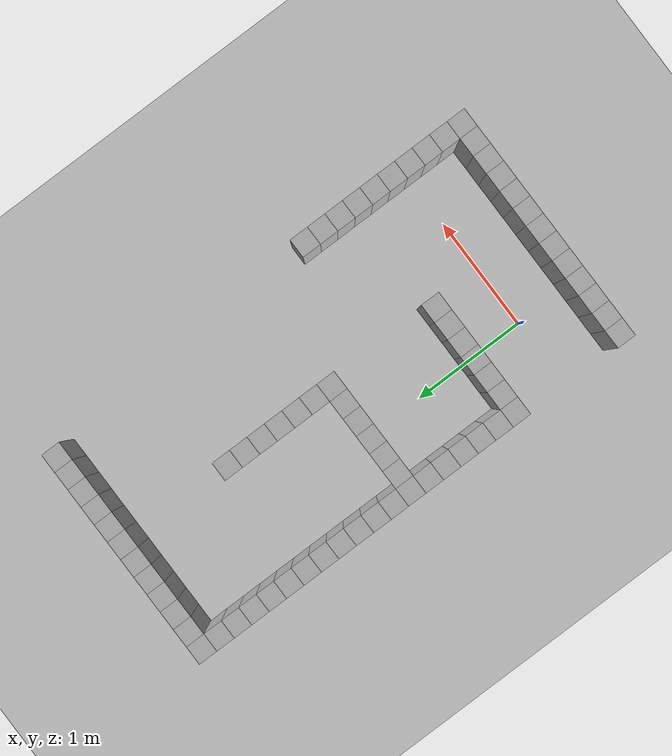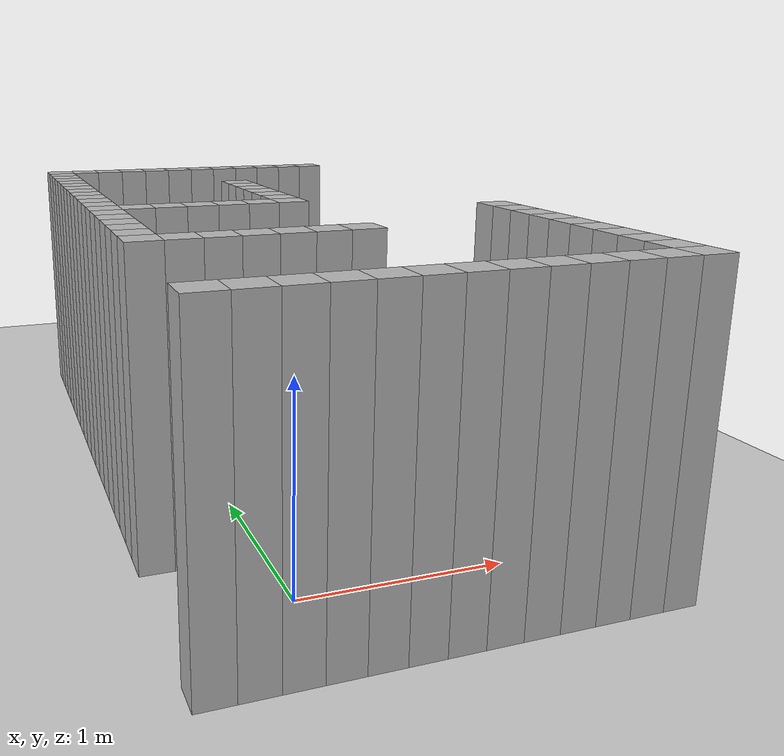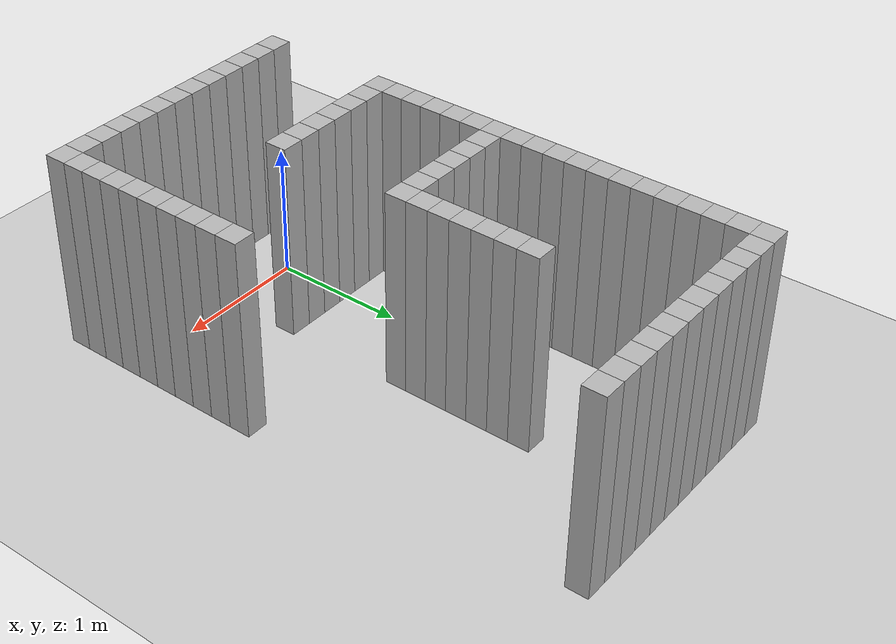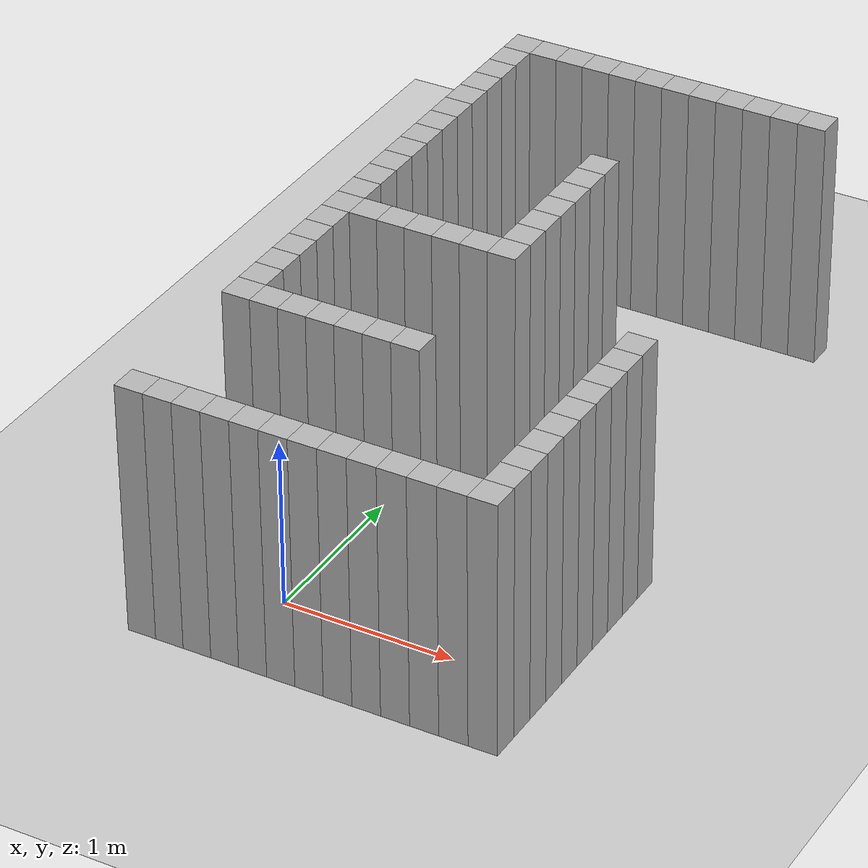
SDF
<sdf version="1.6">
 <world name="default">
  <include><uri>model://sun</uri></include>
  <include><uri>model://ground_plane</uri></include>
  <model name="Maze">
   <pose>-0.75 -0.75 0 0 0 0 0</pose>
   <link name="link_0">
    <pose>0.25 0.25 0.75 0 0 0 0</pose>
    <inertial><mass>1</mass></inertial>
    <collision name="collision_0">
     <geometry><box><size>0.16666666666666666 0.16666666666666666 1.5</size></box></geometry>
    </collision>
    <visual name="visual_0">
     <geometry><box><size>0.16666666666666666 0.16666666666666666 1.5</size></box></geometry>
    </visual>
   </link>
   <link name="link_1">
    <pose>0.25 1.2499999999999998 0.75 0 0 0 0</pose>
    <inertial><mass>1</mass></inertial>
    <collision name="collision_1">
     <geometry><box><size>0.16666666666666666 0.16666666666666666 1.5</size></box></geometry>
    </collision>
    <visual name="visual_1">
     <geometry><box><size>0.16666666666666666 0.16666666666666666 1.5</size></box></geometry>
    </visual>
   </link>
   <link name="link_2">
    <pose>0.25 1.4166666666666665 0.75 0 0 0 0</pose>
    <inertial><mass>1</mass></inertial>
    <collision name="collision_2">
     <geometry><box><size>0.16666666666666666 0.16666666666666666 1.5</size></box></geometry>
    </collision>
    <visual name="visual_2">
     <geometry><box><size>0.16666666666666666 0.16666666666666666 1.5</size></box></geometry>
    </visual>
   </link>
   <link name="link_3">
    <pose>0.25 1.5833333333333333 0.75 0 0 0 0</pose>
    <inertial><mass>1</mass></inertial>
    <collision name="collision_3">
     <geometry><box><size>0.16666666666666666 0.16666666666666666 1.5</size></box></geometry>
    </collision>
    <visual name="visual_3">
     <geometry><box><size>0.16666666666666666 0.16666666666666666 1.5</size></box></geometry>
    </visual>
   </link>
   <link name="link_4">
    <pose>0.25 1.7499999999999998 0.75 0 0 0 0</pose>
    <inertial><mass>1</mass></inertial>
    <collision name="collision_4">
     <geometry><box><size>0.16666666666666666 0.16666666666666666 1.5</size></box></geometry>
    </collision>
    <visual name="visual_4">
     <geometry><box><size>0.16666666666666666 0.16666666666666666 1.5</size></box></geometry>
    </visual>
   </link>
   <link name="link_5">
    <pose>0.25 1.9166666666666665 0.75 0 0 0 0</pose>
    <inertial><mass>1</mass></inertial>
    <collision name="collision_5">
     <geometry><box><size>0.16666666666666666 0.16666666666666666 1.5</size></box></geometry>
    </collision>
    <visual name="visual_5">
     <geometry><box><size>0.16666666666666666 0.16666666666666666 1.5</size></box></geometry>
    </visual>
   </link>
   <link name="link_6">
    <pose>0.25 2.0833333333333335 0.75 0 0 0 0</pose>
    <inertial><mass>1</mass></inertial>
    <collision name="collision_6">
     <geometry><box><size>0.16666666666666666 0.16666666666666666 1.5</size></box></geometry>
    </collision>
    <visual name="visual_6">
     <geometry><box><size>0.16666666666666666 0.16666666666666666 1.5</size></box></geometry>
    </visual>
   </link>
   <link name="link_7">
    <pose>0.25 2.25 0.75 0 0 0 0</pose>
    <inertial><mass>1</mass></inertial>
    <collision name="collision_7">
     <geometry><box><size>0.16666666666666666 0.16666666666666666 1.5</size></box></geometry>
    </collision>
    <visual name="visual_7">
     <geometry><box><size>0.16666666666666666 0.16666666666666666 1.5</size></box></geometry>
    </visual>
   </link>
   <link name="link_8">
    <pose>0.25 2.4166666666666665 0.75 0 0 0 0</pose>
    <inertial><mass>1</mass></inertial>
    <collision name="collision_8">
     <geometry><box><size>0.16666666666666666 0.16666666666666666 1.5</size></box></geometry>
    </collision>
    <visual name="visual_8">
     <geometry><box><size>0.16666666666666666 0.16666666666666666 1.5</size></box></geometry>
    </visual>
   </link>
   <link name="link_9">
    <pose>0.25 2.5833333333333335 0.75 0 0 0 0</pose>
    <inertial><mass>1</mass></inertial>
    <collision name="collision_9">
     <geometry><box><size>0.16666666666666666 0.16666666666666666 1.5</size></box></geometry>
    </collision>
    <visual name="visual_9">
     <geometry><box><size>0.16666666666666666 0.16666666666666666 1.5</size></box></geometry>
    </visual>
   </link>
   <link name="link_10">
    <pose>0.25 2.75 0.75 0 0 0 0</pose>
    <inertial><mass>1</mass></inertial>
    <collision name="collision_10">
     <geometry><box><size>0.16666666666666666 0.16666666666666666 1.5</size></box></geometry>
    </collision>
    <visual name="visual_10">
     <geometry><box><size>0.16666666666666666 0.16666666666666666 1.5</size></box></geometry>
    </visual>
   </link>
   <link name="link_11">
    <pose>0.25 2.9166666666666665 0.75 0 0 0 0</pose>
    <inertial><mass>1</mass></inertial>
    <collision name="collision_11">
     <geometry><box><size>0.16666666666666666 0.16666666666666666 1.5</size></box></geometry>
    </collision>
    <visual name="visual_11">
     <geometry><box><size>0.16666666666666666 0.16666666666666666 1.5</size></box></geometry>
    </visual>
   </link>
   <link name="link_12">
    <pose>0.25 3.0833333333333335 0.75 0 0 0 0</pose>
    <inertial><mass>1</mass></inertial>
    <collision name="collision_12">
     <geometry><box><size>0.16666666666666666 0.16666666666666666 1.5</size></box></geometry>
    </collision>
    <visual name="visual_12">
     <geometry><box><size>0.16666666666666666 0.16666666666666666 1.5</size></box></geometry>
    </visual>
   </link>
   <link name="link_13">
    <pose>0.25 3.25 0.75 0 0 0 0</pose>
    <inertial><mass>1</mass></inertial>
    <collision name="collision_13">
     <geometry><box><size>0.16666666666666666 0.16666666666666666 1.5</size></box></geometry>
    </collision>
    <visual name="visual_13">
     <geometry><box><size>0.16666666666666666 0.16666666666666666 1.5</size></box></geometry>
    </visual>
   </link>
   <link name="link_14">
    <pose>0.25 3.4166666666666665 0.75 0 0 0 0</pose>
    <inertial><mass>1</mass></inertial>
    <collision name="collision_14">
     <geometry><box><size>0.16666666666666666 0.16666666666666666 1.5</size></box></geometry>
    </collision>
    <visual name="visual_14">
     <geometry><box><size>0.16666666666666666 0.16666666666666666 1.5</size></box></geometry>
    </visual>
   </link>
   <link name="link_15">
    <pose>0.25 3.5833333333333335 0.75 0 0 0 0</pose>
    <inertial><mass>1</mass></inertial>
    <collision name="collision_15">
     <geometry><box><size>0.16666666666666666 0.16666666666666666 1.5</size></box></geometry>
    </collision>
    <visual name="visual_15">
     <geometry><box><size>0.16666666666666666 0.16666666666666666 1.5</size></box></geometry>
    </visual>
   </link>
   <link name="link_16">
    <pose>0.25 3.75 0.75 0 0 0 0</pose>
    <inertial><mass>1</mass></inertial>
    <collision name="collision_16">
     <geometry><box><size>0.16666666666666666 0.16666666666666666 1.5</size></box></geometry>
    </collision>
    <visual name="visual_16">
     <geometry><box><size>0.16666666666666666 0.16666666666666666 1.5</size></box></geometry>
    </visual>
   </link>
   <link name="link_17">
    <pose>0.25 3.9166666666666665 0.75 0 0 0 0</pose>
    <inertial><mass>1</mass></inertial>
    <collision name="collision_17">
     <geometry><box><size>0.16666666666666666 0.16666666666666666 1.5</size></box></geometry>
    </collision>
    <visual name="visual_17">
     <geometry><box><size>0.16666666666666666 0.16666666666666666 1.5</size></box></geometry>
    </visual>
   </link>
   <link name="link_18">
    <pose>0.25 4.083333333333333 0.75 0 0 0 0</pose>
    <inertial><mass>1</mass></inertial>
    <collision name="collision_18">
     <geometry><box><size>0.16666666666666666 0.16666666666666666 1.5</size></box></geometry>
    </collision>
    <visual name="visual_18">
     <geometry><box><size>0.16666666666666666 0.16666666666666666 1.5</size></box></geometry>
    </visual>
   </link>
   <link name="link_19">
    <pose>0.25 4.249999999999999 0.75 0 0 0 0</pose>
    <inertial><mass>1</mass></inertial>
    <collision name="collision_19">
     <geometry><box><size>0.16666666666666666 0.16666666666666666 1.5</size></box></geometry>
    </collision>
    <visual name="visual_19">
     <geometry><box><size>0.16666666666666666 0.16666666666666666 1.5</size></box></geometry>
    </visual>
   </link>
   <link name="link_20">
    <pose>0.41666666666666663 0.25 0.75 0 0 0 0</pose>
    <inertial><mass>1</mass></inertial>
    <collision name="collision_20">
     <geometry><box><size>0.16666666666666666 0.16666666666666666 1.5</size></box></geometry>
    </collision>
    <visual name="visual_20">
     <geometry><box><size>0.16666666666666666 0.16666666666666666 1.5</size></box></geometry>
    </visual>
   </link>
   <link name="link_21">
    <pose>0.41666666666666663 1.2499999999999998 0.75 0 0 0 0</pose>
    <inertial><mass>1</mass></inertial>
    <collision name="collision_21">
     <geometry><box><size>0.16666666666666666 0.16666666666666666 1.5</size></box></geometry>
    </collision>
    <visual name="visual_21">
     <geometry><box><size>0.16666666666666666 0.16666666666666666 1.5</size></box></geometry>
    </visual>
   </link>
   <link name="link_22">
    <pose>0.41666666666666663 2.25 0.75 0 0 0 0</pose>
    <inertial><mass>1</mass></inertial>
    <collision name="collision_22">
     <geometry><box><size>0.16666666666666666 0.16666666666666666 1.5</size></box></geometry>
    </collision>
    <visual name="visual_22">
     <geometry><box><size>0.16666666666666666 0.16666666666666666 1.5</size></box></geometry>
    </visual>
   </link>
   <link name="link_23">
    <pose>0.41666666666666663 4.249999999999999 0.75 0 0 0 0</pose>
    <inertial><mass>1</mass></inertial>
    <collision name="collision_23">
     <geometry><box><size>0.16666666666666666 0.16666666666666666 1.5</size></box></geometry>
    </collision>
    <visual name="visual_23">
     <geometry><box><size>0.16666666666666666 0.16666666666666666 1.5</size></box></geometry>
    </visual>
   </link>
   <link name="link_24">
    <pose>0.5833333333333334 0.25 0.75 0 0 0 0</pose>
    <inertial><mass>1</mass></inertial>
    <collision name="collision_24">
     <geometry><box><size>0.16666666666666666 0.16666666666666666 1.5</size></box></geometry>
    </collision>
    <visual name="visual_24">
     <geometry><box><size>0.16666666666666666 0.16666666666666666 1.5</size></box></geometry>
    </visual>
   </link>
   <link name="link_25">
    <pose>0.5833333333333334 1.2499999999999998 0.75 0 0 0 0</pose>
    <inertial><mass>1</mass></inertial>
    <collision name="collision_25">
     <geometry><box><size>0.16666666666666666 0.16666666666666666 1.5</size></box></geometry>
    </collision>
    <visual name="visual_25">
     <geometry><box><size>0.16666666666666666 0.16666666666666666 1.5</size></box></geometry>
    </visual>
   </link>
   <link name="link_26">
    <pose>0.5833333333333334 2.25 0.75 0 0 0 0</pose>
    <inertial><mass>1</mass></inertial>
    <collision name="collision_26">
     <geometry><box><size>0.16666666666666666 0.16666666666666666 1.5</size></box></geometry>
    </collision>
    <visual name="visual_26">
     <geometry><box><size>0.16666666666666666 0.16666666666666666 1.5</size></box></geometry>
    </visual>
   </link>
   <link name="link_27">
    <pose>0.5833333333333334 4.249999999999999 0.75 0 0 0 0</pose>
    <inertial><mass>1</mass></inertial>
    <collision name="collision_27">
     <geometry><box><size>0.16666666666666666 0.16666666666666666 1.5</size></box></geometry>
    </collision>
    <visual name="visual_27">
     <geometry><box><size>0.16666666666666666 0.16666666666666666 1.5</size></box></geometry>
    </visual>
   </link>
   <link name="link_28">
    <pose>0.75 0.25 0.75 0 0 0 0</pose>
    <inertial><mass>1</mass></inertial>
    <collision name="collision_28">
     <geometry><box><size>0.16666666666666666 0.16666666666666666 1.5</size></box></geometry>
    </collision>
    <visual name="visual_28">
     <geometry><box><size>0.16666666666666666 0.16666666666666666 1.5</size></box></geometry>
    </visual>
   </link>
   <link name="link_29">
    <pose>0.75 1.2499999999999998 0.75 0 0 0 0</pose>
    <inertial><mass>1</mass></inertial>
    <collision name="collision_29">
     <geometry><box><size>0.16666666666666666 0.16666666666666666 1.5</size></box></geometry>
    </collision>
    <visual name="visual_29">
     <geometry><box><size>0.16666666666666666 0.16666666666666666 1.5</size></box></geometry>
    </visual>
   </link>
   <link name="link_30">
    <pose>0.75 2.25 0.75 0 0 0 0</pose>
    <inertial><mass>1</mass></inertial>
    <collision name="collision_30">
     <geometry><box><size>0.16666666666666666 0.16666666666666666 1.5</size></box></geometry>
    </collision>
    <visual name="visual_30">
     <geometry><box><size>0.16666666666666666 0.16666666666666666 1.5</size></box></geometry>
    </visual>
   </link>
   <link name="link_31">
    <pose>0.75 4.249999999999999 0.75 0 0 0 0</pose>
    <inertial><mass>1</mass></inertial>
    <collision name="collision_31">
     <geometry><box><size>0.16666666666666666 0.16666666666666666 1.5</size></box></geometry>
    </collision>
    <visual name="visual_31">
     <geometry><box><size>0.16666666666666666 0.16666666666666666 1.5</size></box></geometry>
    </visual>
   </link>
   <link name="link_32">
    <pose>0.9166666666666666 0.25 0.75 0 0 0 0</pose>
    <inertial><mass>1</mass></inertial>
    <collision name="collision_32">
     <geometry><box><size>0.16666666666666666 0.16666666666666666 1.5</size></box></geometry>
    </collision>
    <visual name="visual_32">
     <geometry><box><size>0.16666666666666666 0.16666666666666666 1.5</size></box></geometry>
    </visual>
   </link>
   <link name="link_33">
    <pose>0.9166666666666666 1.2499999999999998 0.75 0 0 0 0</pose>
    <inertial><mass>1</mass></inertial>
    <collision name="collision_33">
     <geometry><box><size>0.16666666666666666 0.16666666666666666 1.5</size></box></geometry>
    </collision>
    <visual name="visual_33">
     <geometry><box><size>0.16666666666666666 0.16666666666666666 1.5</size></box></geometry>
    </visual>
   </link>
   <link name="link_34">
    <pose>0.9166666666666666 2.25 0.75 0 0 0 0</pose>
    <inertial><mass>1</mass></inertial>
    <collision name="collision_34">
     <geometry><box><size>0.16666666666666666 0.16666666666666666 1.5</size></box></geometry>
    </collision>
    <visual name="visual_34">
     <geometry><box><size>0.16666666666666666 0.16666666666666666 1.5</size></box></geometry>
    </visual>
   </link>
   <link name="link_35">
    <pose>0.9166666666666666 4.249999999999999 0.75 0 0 0 0</pose>
    <inertial><mass>1</mass></inertial>
    <collision name="collision_35">
     <geometry><box><size>0.16666666666666666 0.16666666666666666 1.5</size></box></geometry>
    </collision>
    <visual name="visual_35">
     <geometry><box><size>0.16666666666666666 0.16666666666666666 1.5</size></box></geometry>
    </visual>
   </link>
   <link name="link_36">
    <pose>1.0833333333333333 0.25 0.75 0 0 0 0</pose>
    <inertial><mass>1</mass></inertial>
    <collision name="collision_36">
     <geometry><box><size>0.16666666666666666 0.16666666666666666 1.5</size></box></geometry>
    </collision>
    <visual name="visual_36">
     <geometry><box><size>0.16666666666666666 0.16666666666666666 1.5</size></box></geometry>
    </visual>
   </link>
   <link name="link_37">
    <pose>1.0833333333333333 1.2499999999999998 0.75 0 0 0 0</pose>
    <inertial><mass>1</mass></inertial>
    <collision name="collision_37">
     <geometry><box><size>0.16666666666666666 0.16666666666666666 1.5</size></box></geometry>
    </collision>
    <visual name="visual_37">
     <geometry><box><size>0.16666666666666666 0.16666666666666666 1.5</size></box></geometry>
    </visual>
   </link>
   <link name="link_38">
    <pose>1.0833333333333333 2.25 0.75 0 0 0 0</pose>
    <inertial><mass>1</mass></inertial>
    <collision name="collision_38">
     <geometry><box><size>0.16666666666666666 0.16666666666666666 1.5</size></box></geometry>
    </collision>
    <visual name="visual_38">
     <geometry><box><size>0.16666666666666666 0.16666666666666666 1.5</size></box></geometry>
    </visual>
   </link>
   <link name="link_39">
    <pose>1.0833333333333333 4.249999999999999 0.75 0 0 0 0</pose>
    <inertial><mass>1</mass></inertial>
    <collision name="collision_39">
     <geometry><box><size>0.16666666666666666 0.16666666666666666 1.5</size></box></geometry>
    </collision>
    <visual name="visual_39">
     <geometry><box><size>0.16666666666666666 0.16666666666666666 1.5</size></box></geometry>
    </visual>
   </link>
   <link name="link_40">
    <pose>1.2499999999999998 0.25 0.75 0 0 0 0</pose>
    <inertial><mass>1</mass></inertial>
    <collision name="collision_40">
     <geometry><box><size>0.16666666666666666 0.16666666666666666 1.5</size></box></geometry>
    </collision>
    <visual name="visual_40">
     <geometry><box><size>0.16666666666666666 0.16666666666666666 1.5</size></box></geometry>
    </visual>
   </link>
   <link name="link_41">
    <pose>1.2499999999999998 1.2499999999999998 0.75 0 0 0 0</pose>
    <inertial><mass>1</mass></inertial>
    <collision name="collision_41">
     <geometry><box><size>0.16666666666666666 0.16666666666666666 1.5</size></box></geometry>
    </collision>
    <visual name="visual_41">
     <geometry><box><size>0.16666666666666666 0.16666666666666666 1.5</size></box></geometry>
    </visual>
   </link>
   <link name="link_42">
    <pose>1.2499999999999998 2.25 0.75 0 0 0 0</pose>
    <inertial><mass>1</mass></inertial>
    <collision name="collision_42">
     <geometry><box><size>0.16666666666666666 0.16666666666666666 1.5</size></box></geometry>
    </collision>
    <visual name="visual_42">
     <geometry><box><size>0.16666666666666666 0.16666666666666666 1.5</size></box></geometry>
    </visual>
   </link>
   <link name="link_43">
    <pose>1.2499999999999998 2.4166666666666665 0.75 0 0 0 0</pose>
    <inertial><mass>1</mass></inertial>
    <collision name="collision_43">
     <geometry><box><size>0.16666666666666666 0.16666666666666666 1.5</size></box></geometry>
    </collision>
    <visual name="visual_43">
     <geometry><box><size>0.16666666666666666 0.16666666666666666 1.5</size></box></geometry>
    </visual>
   </link>
   <link name="link_44">
    <pose>1.2499999999999998 2.5833333333333335 0.75 0 0 0 0</pose>
    <inertial><mass>1</mass></inertial>
    <collision name="collision_44">
     <geometry><box><size>0.16666666666666666 0.16666666666666666 1.5</size></box></geometry>
    </collision>
    <visual name="visual_44">
     <geometry><box><size>0.16666666666666666 0.16666666666666666 1.5</size></box></geometry>
    </visual>
   </link>
   <link name="link_45">
    <pose>1.2499999999999998 2.75 0.75 0 0 0 0</pose>
    <inertial><mass>1</mass></inertial>
    <collision name="collision_45">
     <geometry><box><size>0.16666666666666666 0.16666666666666666 1.5</size></box></geometry>
    </collision>
    <visual name="visual_45">
     <geometry><box><size>0.16666666666666666 0.16666666666666666 1.5</size></box></geometry>
    </visual>
   </link>
   <link name="link_46">
    <pose>1.2499999999999998 2.9166666666666665 0.75 0 0 0 0</pose>
    <inertial><mass>1</mass></inertial>
    <collision name="collision_46">
     <geometry><box><size>0.16666666666666666 0.16666666666666666 1.5</size></box></geometry>
    </collision>
    <visual name="visual_46">
     <geometry><box><size>0.16666666666666666 0.16666666666666666 1.5</size></box></geometry>
    </visual>
   </link>
   <link name="link_47">
    <pose>1.2499999999999998 3.0833333333333335 0.75 0 0 0 0</pose>
    <inertial><mass>1</mass></inertial>
    <collision name="collision_47">
     <geometry><box><size>0.16666666666666666 0.16666666666666666 1.5</size></box></geometry>
    </collision>
    <visual name="visual_47">
     <geometry><box><size>0.16666666666666666 0.16666666666666666 1.5</size></box></geometry>
    </visual>
   </link>
   <link name="link_48">
    <pose>1.2499999999999998 3.25 0.75 0 0 0 0</pose>
    <inertial><mass>1</mass></inertial>
    <collision name="collision_48">
     <geometry><box><size>0.16666666666666666 0.16666666666666666 1.5</size></box></geometry>
    </collision>
    <visual name="visual_48">
     <geometry><box><size>0.16666666666666666 0.16666666666666666 1.5</size></box></geometry>
    </visual>
   </link>
   <link name="link_49">
    <pose>1.2499999999999998 4.249999999999999 0.75 0 0 0 0</pose>
    <inertial><mass>1</mass></inertial>
    <collision name="collision_49">
     <geometry><box><size>0.16666666666666666 0.16666666666666666 1.5</size></box></geometry>
    </collision>
    <visual name="visual_49">
     <geometry><box><size>0.16666666666666666 0.16666666666666666 1.5</size></box></geometry>
    </visual>
   </link>
   <link name="link_50">
    <pose>1.4166666666666665 0.25 0.75 0 0 0 0</pose>
    <inertial><mass>1</mass></inertial>
    <collision name="collision_50">
     <geometry><box><size>0.16666666666666666 0.16666666666666666 1.5</size></box></geometry>
    </collision>
    <visual name="visual_50">
     <geometry><box><size>0.16666666666666666 0.16666666666666666 1.5</size></box></geometry>
    </visual>
   </link>
   <link name="link_51">
    <pose>1.4166666666666665 4.249999999999999 0.75 0 0 0 0</pose>
    <inertial><mass>1</mass></inertial>
    <collision name="collision_51">
     <geometry><box><size>0.16666666666666666 0.16666666666666666 1.5</size></box></geometry>
    </collision>
    <visual name="visual_51">
     <geometry><box><size>0.16666666666666666 0.16666666666666666 1.5</size></box></geometry>
    </visual>
   </link>
   <link name="link_52">
    <pose>1.5833333333333333 0.25 0.75 0 0 0 0</pose>
    <inertial><mass>1</mass></inertial>
    <collision name="collision_52">
     <geometry><box><size>0.16666666666666666 0.16666666666666666 1.5</size></box></geometry>
    </collision>
    <visual name="visual_52">
     <geometry><box><size>0.16666666666666666 0.16666666666666666 1.5</size></box></geometry>
    </visual>
   </link>
   <link name="link_53">
    <pose>1.5833333333333333 4.249999999999999 0.75 0 0 0 0</pose>
    <inertial><mass>1</mass></inertial>
    <collision name="collision_53">
     <geometry><box><size>0.16666666666666666 0.16666666666666666 1.5</size></box></geometry>
    </collision>
    <visual name="visual_53">
     <geometry><box><size>0.16666666666666666 0.16666666666666666 1.5</size></box></geometry>
    </visual>
   </link>
   <link name="link_54">
    <pose>1.7499999999999998 0.25 0.75 0 0 0 0</pose>
    <inertial><mass>1</mass></inertial>
    <collision name="collision_54">
     <geometry><box><size>0.16666666666666666 0.16666666666666666 1.5</size></box></geometry>
    </collision>
    <visual name="visual_54">
     <geometry><box><size>0.16666666666666666 0.16666666666666666 1.5</size></box></geometry>
    </visual>
   </link>
   <link name="link_55">
    <pose>1.7499999999999998 4.249999999999999 0.75 0 0 0 0</pose>
    <inertial><mass>1</mass></inertial>
    <collision name="collision_55">
     <geometry><box><size>0.16666666666666666 0.16666666666666666 1.5</size></box></geometry>
    </collision>
    <visual name="visual_55">
     <geometry><box><size>0.16666666666666666 0.16666666666666666 1.5</size></box></geometry>
    </visual>
   </link>
   <link name="link_56">
    <pose>1.9166666666666665 0.25 0.75 0 0 0 0</pose>
    <inertial><mass>1</mass></inertial>
    <collision name="collision_56">
     <geometry><box><size>0.16666666666666666 0.16666666666666666 1.5</size></box></geometry>
    </collision>
    <visual name="visual_56">
     <geometry><box><size>0.16666666666666666 0.16666666666666666 1.5</size></box></geometry>
    </visual>
   </link>
   <link name="link_57">
    <pose>1.9166666666666665 4.249999999999999 0.75 0 0 0 0</pose>
    <inertial><mass>1</mass></inertial>
    <collision name="collision_57">
     <geometry><box><size>0.16666666666666666 0.16666666666666666 1.5</size></box></geometry>
    </collision>
    <visual name="visual_57">
     <geometry><box><size>0.16666666666666666 0.16666666666666666 1.5</size></box></geometry>
    </visual>
   </link>
   <link name="link_58">
    <pose>2.0833333333333335 0.25 0.75 0 0 0 0</pose>
    <inertial><mass>1</mass></inertial>
    <collision name="collision_58">
     <geometry><box><size>0.16666666666666666 0.16666666666666666 1.5</size></box></geometry>
    </collision>
    <visual name="visual_58">
     <geometry><box><size>0.16666666666666666 0.16666666666666666 1.5</size></box></geometry>
    </visual>
   </link>
   <link name="link_59">
    <pose>2.0833333333333335 4.249999999999999 0.75 0 0 0 0</pose>
    <inertial><mass>1</mass></inertial>
    <collision name="collision_59">
     <geometry><box><size>0.16666666666666666 0.16666666666666666 1.5</size></box></geometry>
    </collision>
    <visual name="visual_59">
     <geometry><box><size>0.16666666666666666 0.16666666666666666 1.5</size></box></geometry>
    </visual>
   </link>
   <link name="link_60">
    <pose>2.25 0.25 0.75 0 0 0 0</pose>
    <inertial><mass>1</mass></inertial>
    <collision name="collision_60">
     <geometry><box><size>0.16666666666666666 0.16666666666666666 1.5</size></box></geometry>
    </collision>
    <visual name="visual_60">
     <geometry><box><size>0.16666666666666666 0.16666666666666666 1.5</size></box></geometry>
    </visual>
   </link>
   <link name="link_61">
    <pose>2.25 0.41666666666666663 0.75 0 0 0 0</pose>
    <inertial><mass>1</mass></inertial>
    <collision name="collision_61">
     <geometry><box><size>0.16666666666666666 0.16666666666666666 1.5</size></box></geometry>
    </collision>
    <visual name="visual_61">
     <geometry><box><size>0.16666666666666666 0.16666666666666666 1.5</size></box></geometry>
    </visual>
   </link>
   <link name="link_62">
    <pose>2.25 0.5833333333333334 0.75 0 0 0 0</pose>
    <inertial><mass>1</mass></inertial>
    <collision name="collision_62">
     <geometry><box><size>0.16666666666666666 0.16666666666666666 1.5</size></box></geometry>
    </collision>
    <visual name="visual_62">
     <geometry><box><size>0.16666666666666666 0.16666666666666666 1.5</size></box></geometry>
    </visual>
   </link>
   <link name="link_63">
    <pose>2.25 0.75 0.75 0 0 0 0</pose>
    <inertial><mass>1</mass></inertial>
    <collision name="collision_63">
     <geometry><box><size>0.16666666666666666 0.16666666666666666 1.5</size></box></geometry>
    </collision>
    <visual name="visual_63">
     <geometry><box><size>0.16666666666666666 0.16666666666666666 1.5</size></box></geometry>
    </visual>
   </link>
   <link name="link_64">
    <pose>2.25 0.9166666666666666 0.75 0 0 0 0</pose>
    <inertial><mass>1</mass></inertial>
    <collision name="collision_64">
     <geometry><box><size>0.16666666666666666 0.16666666666666666 1.5</size></box></geometry>
    </collision>
    <visual name="visual_64">
     <geometry><box><size>0.16666666666666666 0.16666666666666666 1.5</size></box></geometry>
    </visual>
   </link>
   <link name="link_65">
    <pose>2.25 1.0833333333333333 0.75 0 0 0 0</pose>
    <inertial><mass>1</mass></inertial>
    <collision name="collision_65">
     <geometry><box><size>0.16666666666666666 0.16666666666666666 1.5</size></box></geometry>
    </collision>
    <visual name="visual_65">
     <geometry><box><size>0.16666666666666666 0.16666666666666666 1.5</size></box></geometry>
    </visual>
   </link>
   <link name="link_66">
    <pose>2.25 1.2499999999999998 0.75 0 0 0 0</pose>
    <inertial><mass>1</mass></inertial>
    <collision name="collision_66">
     <geometry><box><size>0.16666666666666666 0.16666666666666666 1.5</size></box></geometry>
    </collision>
    <visual name="visual_66">
     <geometry><box><size>0.16666666666666666 0.16666666666666666 1.5</size></box></geometry>
    </visual>
   </link>
   <link name="link_67">
    <pose>2.25 1.4166666666666665 0.75 0 0 0 0</pose>
    <inertial><mass>1</mass></inertial>
    <collision name="collision_67">
     <geometry><box><size>0.16666666666666666 0.16666666666666666 1.5</size></box></geometry>
    </collision>
    <visual name="visual_67">
     <geometry><box><size>0.16666666666666666 0.16666666666666666 1.5</size></box></geometry>
    </visual>
   </link>
   <link name="link_68">
    <pose>2.25 1.5833333333333333 0.75 0 0 0 0</pose>
    <inertial><mass>1</mass></inertial>
    <collision name="collision_68">
     <geometry><box><size>0.16666666666666666 0.16666666666666666 1.5</size></box></geometry>
    </collision>
    <visual name="visual_68">
     <geometry><box><size>0.16666666666666666 0.16666666666666666 1.5</size></box></geometry>
    </visual>
   </link>
   <link name="link_69">
    <pose>2.25 1.7499999999999998 0.75 0 0 0 0</pose>
    <inertial><mass>1</mass></inertial>
    <collision name="collision_69">
     <geometry><box><size>0.16666666666666666 0.16666666666666666 1.5</size></box></geometry>
    </collision>
    <visual name="visual_69">
     <geometry><box><size>0.16666666666666666 0.16666666666666666 1.5</size></box></geometry>
    </visual>
   </link>
  </model>
 </world>
</sdf>
